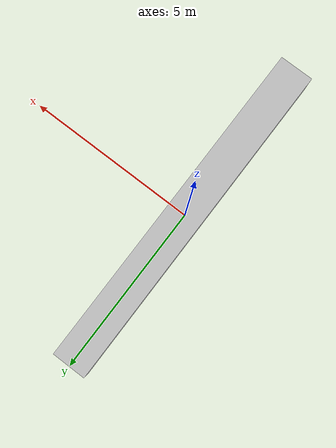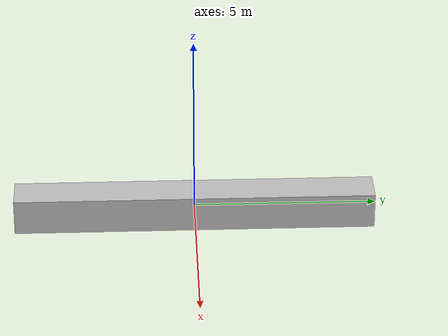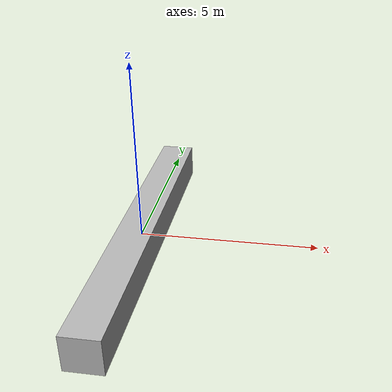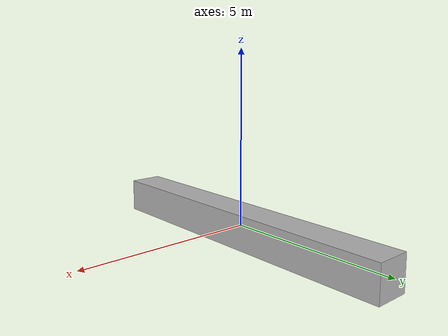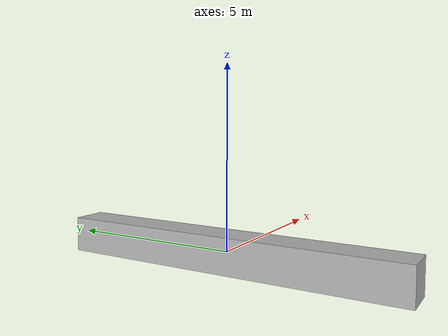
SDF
<?xml version='1.0'?>
<sdf version="1.4">
<model name="box">
  <allow_auto_disable>false</allow_auto_disable>
    <link name="link">
      <inertial>
        <mass>1.0</mass>
        <inertia> <!-- inertias are tricky to compute -->
          <!-- http://gazebosim.org/tutorials?tut=inertia&cat=build_robot -->
          <ixx>0.083</ixx>       <!-- for a box: ixx = 0.083 * mass * (y*y + z*z) -->
          <ixy>0.083</ixy>         <!-- for a box: ixy = 0 -->
          <ixz>0.083</ixz>         <!-- for a box: ixz = 0 -->
          <iyy>0.083</iyy>       <!-- for a box: iyy = 0.083 * mass * (x*x + z*z) -->
          <iyz>0.083</iyz>         <!-- for a box: iyz = 0 -->
          <izz>0.083</izz>       <!-- for a box: izz = 0.083 * mass * (x*x + y*y) -->
        </inertia>
      </inertial>
      <collision name="collision">
        <geometry>
          <box>
            <size>1 9.9 1</size>
          </box>
        </geometry>
      </collision>
      <visual name="visual">
        <geometry>
          <box>
            <size>1 9.9 1</size>
          </box>
        </geometry>
      </visual>
    </link>
  </model>
</sdf>
